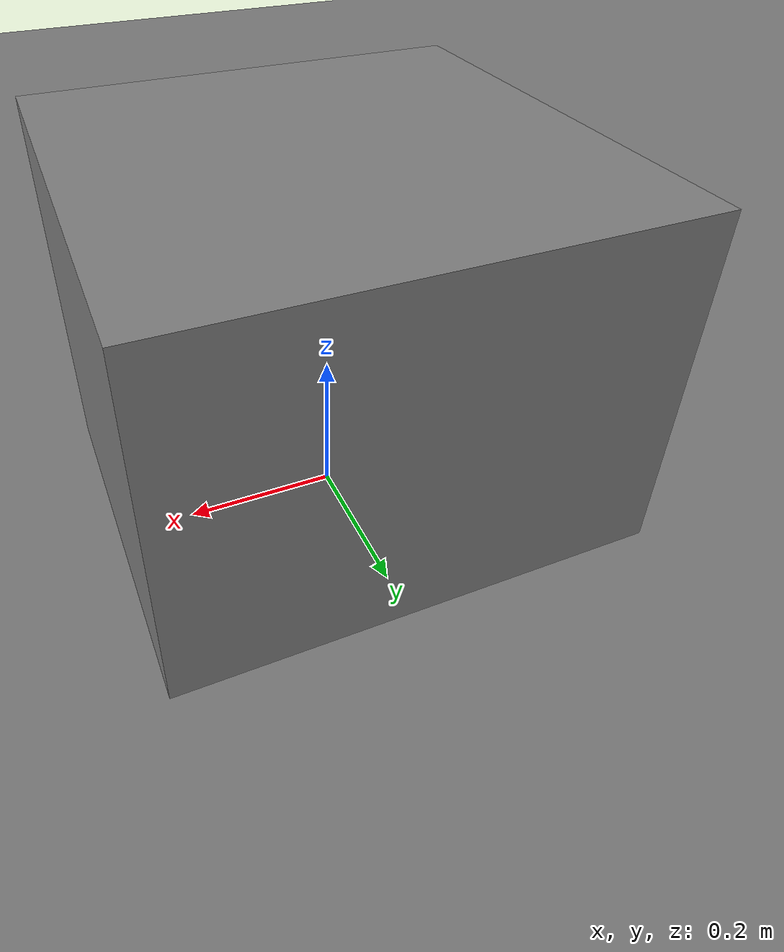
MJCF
<mujoco model="box_plane_tilted_4">
            <option gravity="0 0 0" timestep="0.001"/>
            <worldbody>
                <geom name="floor" type="plane" size="10 10 0.1"
                      euler="10 0 0"/>
                <body name="box" pos="0 0 0.2">
                    <joint type="free"/>
                    <geom type="box" size="0.3 0.3 0.3"/>
                </body>
            </worldbody>
        </mujoco>
